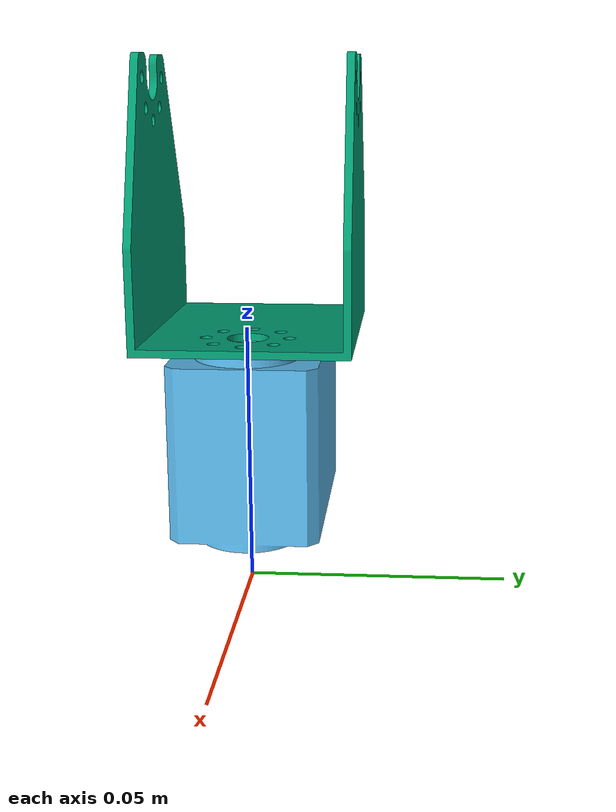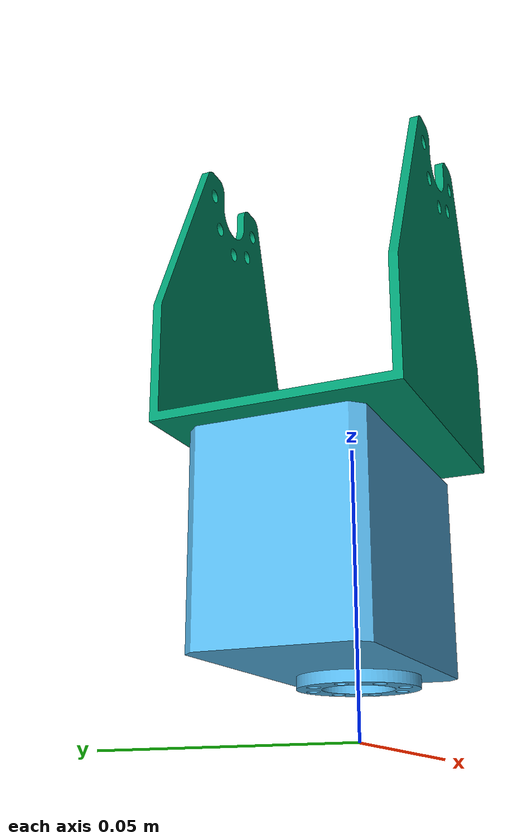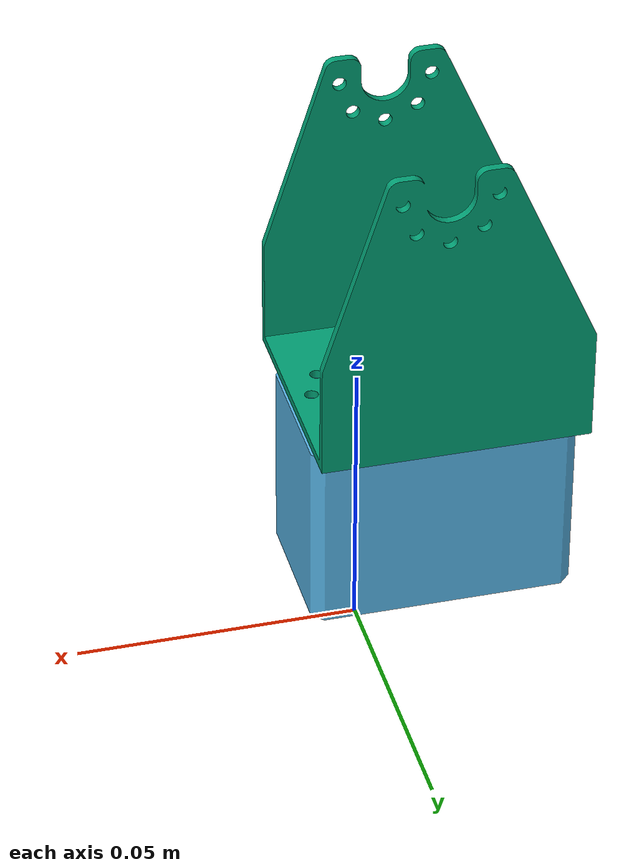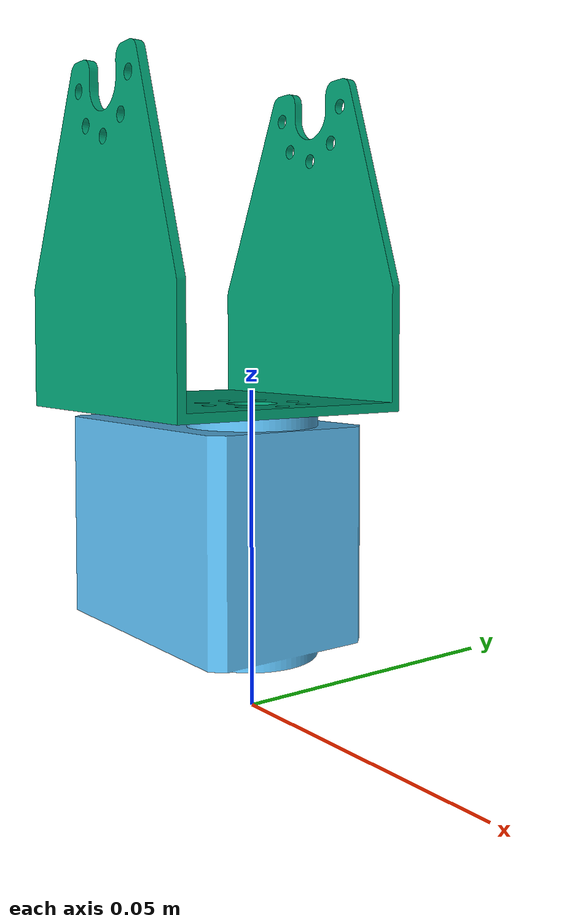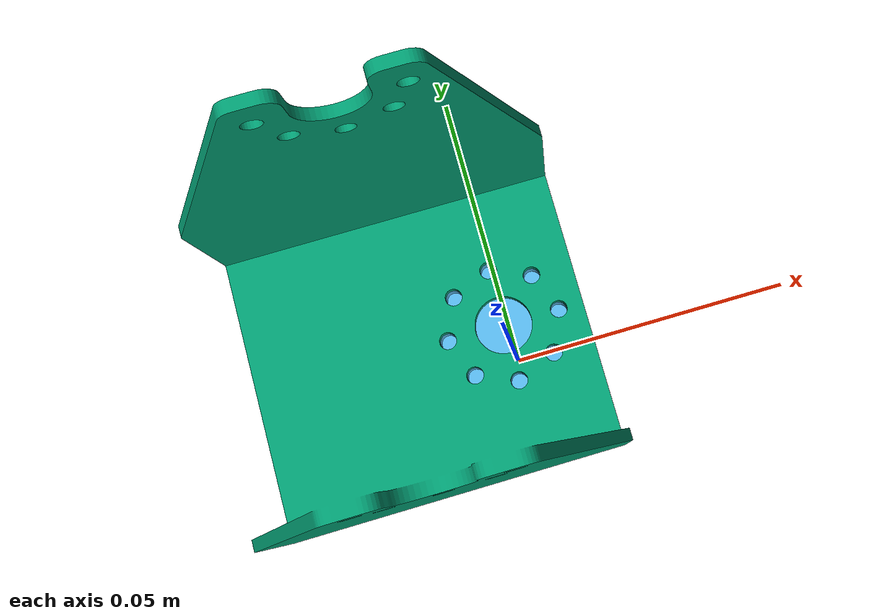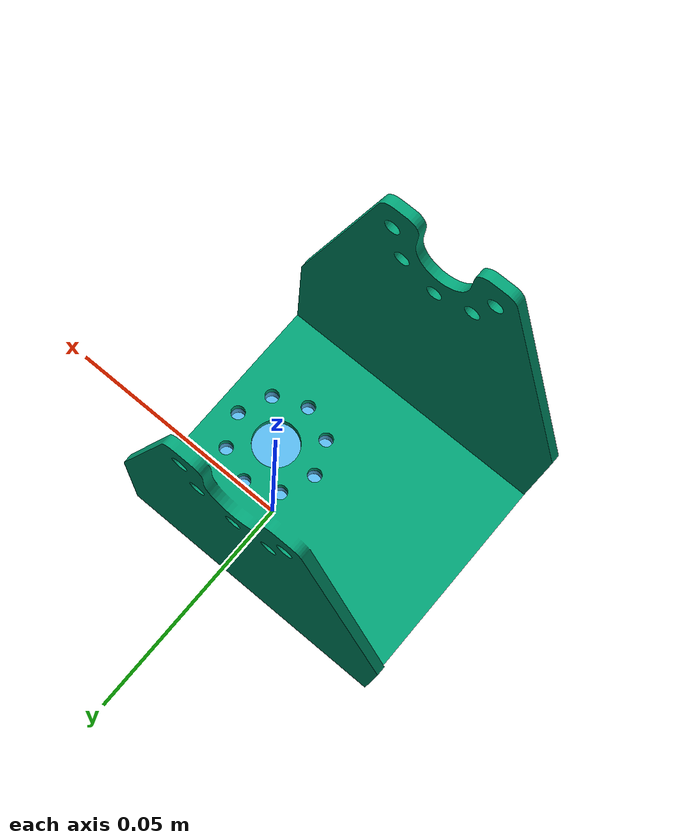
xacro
<?xml version="1.0"?>
<robot name="kyun" xmlns:xacro="http://www.ros.org/wiki/xacro">

<link name="world"/>
<joint name="world_to_base" type="fixed">
  <origin xyz="0 0 0.0465"/>
  <parent link="world"/>
  <child link="base_link"/>
</joint>

<link name="base_link">
  <visual>
    <geometry>
      <mesh filename="package://kyun_description/mesh/servo01.stl" scale="0.001 0.001 0.001"/>
      <origin xyz="0 0 0.0465"/>
    </geometry>
  </visual>
  <collision>
    <geometry>
      <mesh filename="package://kyun_description/mesh/servo01.stl" scale="0.001 0.001 0.001"/>
      <origin xyz="0 0 0.0465"/>
    </geometry>
  </collision>
  <inertial>
    <mass value="0.0572"/>
    <inertia ixx="0.00093819916" ixy="0" ixz="0" iyy="0.00158169916" iyz="0" izz="0.001417845"/>
  </inertial>
</link>

<joint name="base_to_2nd" type="continuous">
  <parent link="base_link"/>
  <child link="2nd_link"/>
  <origin xyz="0 0 0" rpy="0 0 0"/>
  <axis xyz="0 0 1"/>
  <dynamics damping="0.1"/>
</joint>

<link name="2nd_link">
  <visual>
    <geometry>
      <mesh filename="package://kyun_description/mesh/frame12.stl" scale="0.001 0.001 0.001"/>
    </geometry>
  </visual>
  <collision>
    <geometry>
      <mesh filename="package://kyun_description/mesh/frame12.stl" scale="0.001 0.001 0.001"/>
    </geometry>
  </collision>
  <inertial>
    <mass value="0.6"/>
    <inertia ixx="1e-3" ixy="0" ixz="0" iyy="1e-3" iyz="0" izz="1e-3"/>
  </inertial>
</link>
<gazebo>
  <plugin name="gazebo_ros_control" filename="libgazebo_ros_control.so">
    <robotNamespace>/kyun_simple_work</robotNamespace>
    <robotSimType>gazebo_ros_control/DefaultRobotHWSim</robotSimType>
    <legacyModeNS>true</legacyModeNS>
  </plugin>
</gazebo>
</robot>
